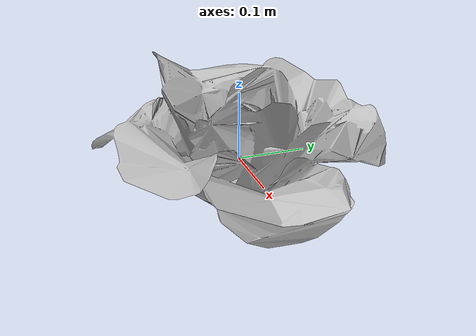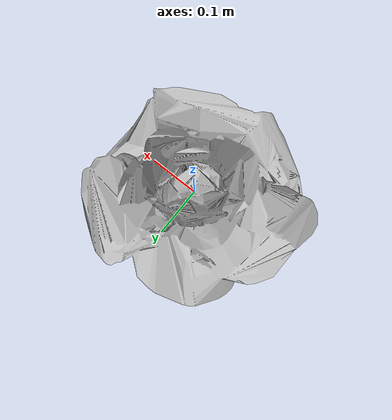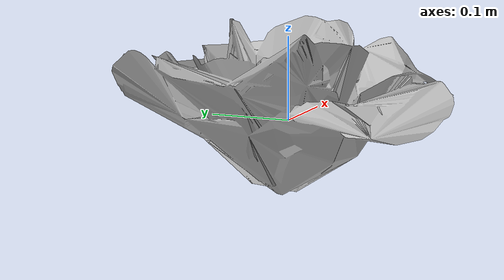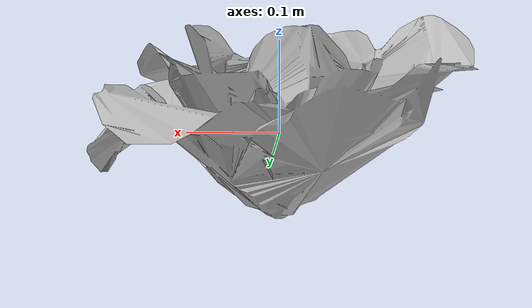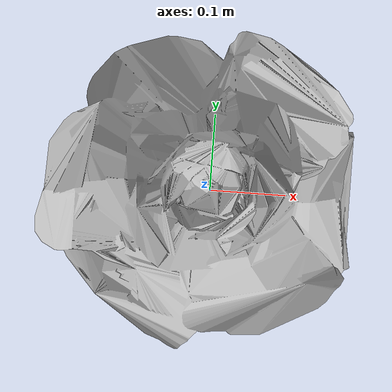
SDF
<?xml version="1.0" ?>
<sdf version="1.5">
  <model name="LettuceBib">
    <static>true</static>
    <link name="link">
      <pose>0 0 0 0 0 1.57079632679</pose>

      <visual name="visual">
        <geometry>
          <mesh>
            <uri>model://lettuce_bib/meshes/LettuceBib.obj</uri>
            <scale>0.010 0.010 0.010</scale>
          </mesh>
        </geometry>
      </visual>

    </link>
  </model>
</sdf>
